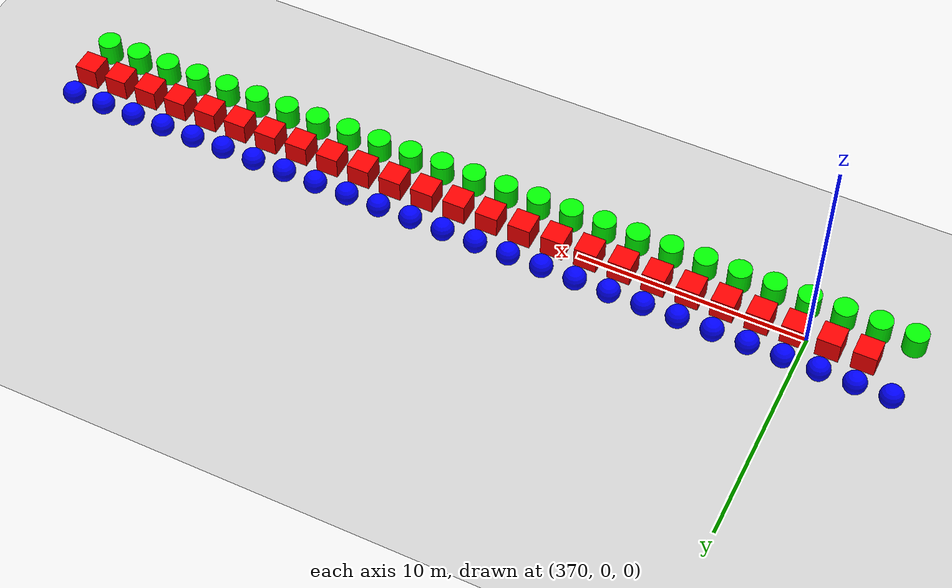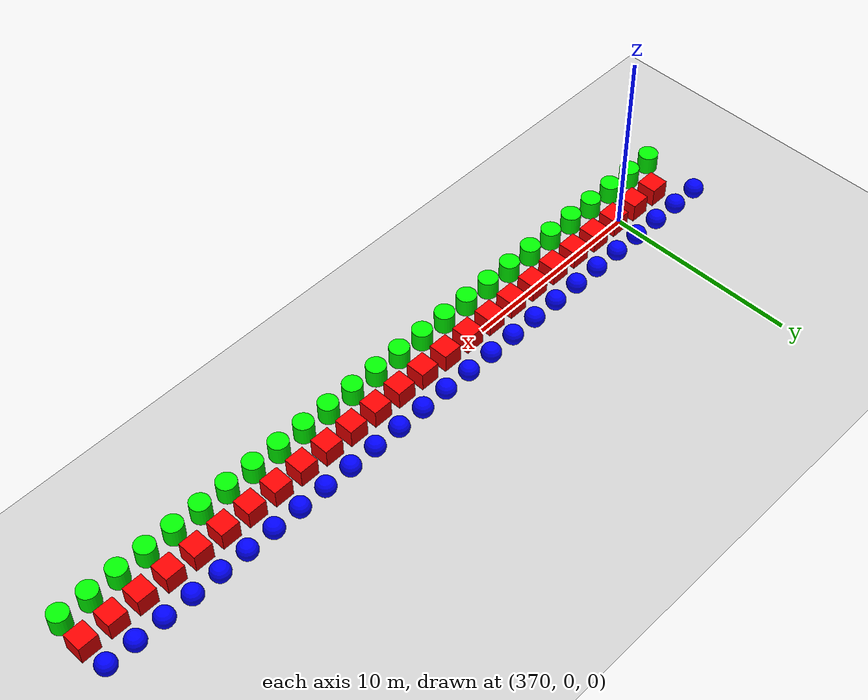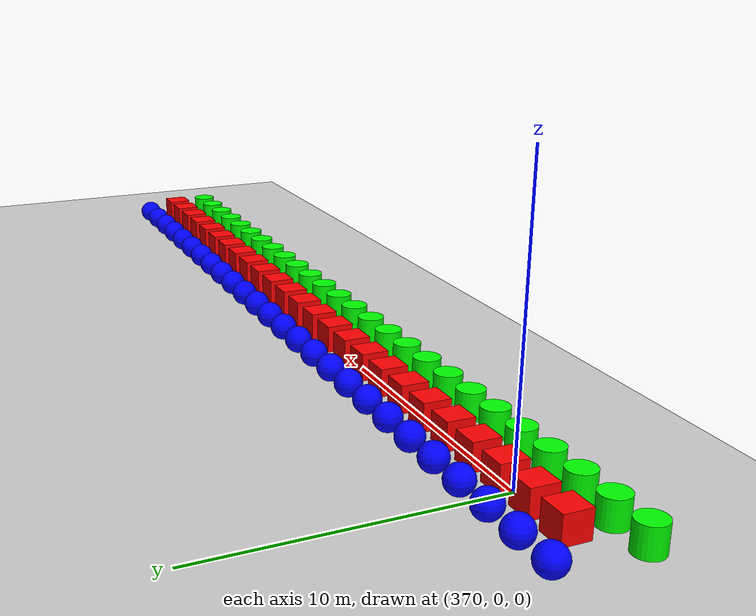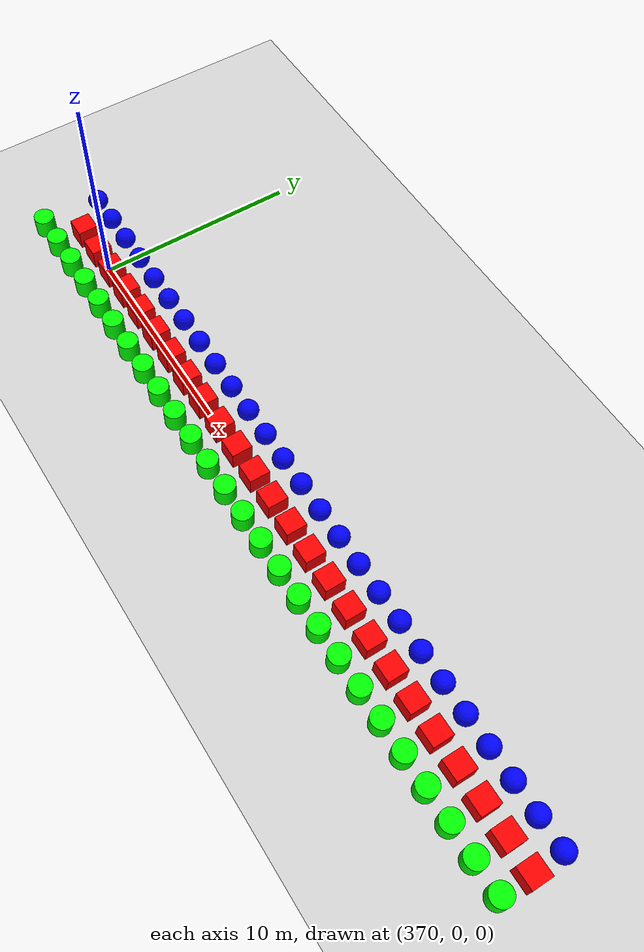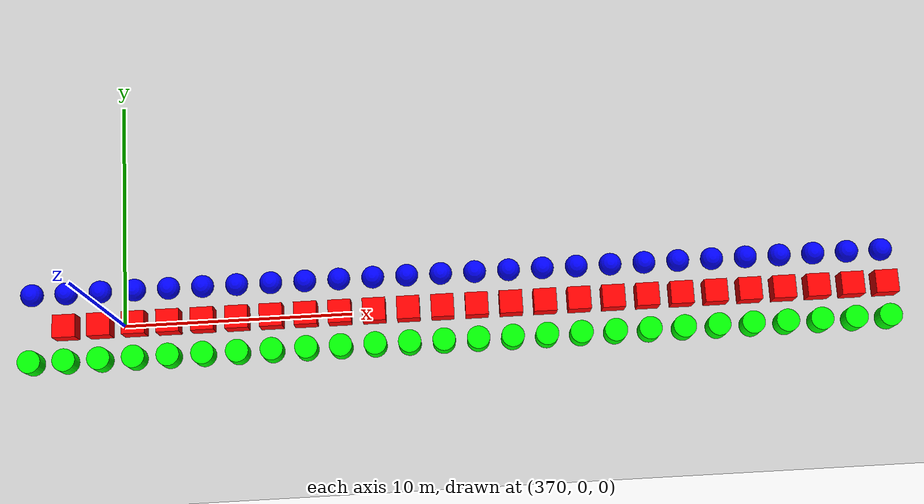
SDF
<sdf version="1.6">
 <world name="shapes">
  <model name="ground_plane">
   <static>true</static>
   <link name="link">
    <collision name="collision">
     <geometry><plane><normal>0 0 1</normal><size>100 100</size></plane></geometry>
    </collision>
    <visual name="visual">
     <geometry><plane><normal>0 0 1</normal><size>100 100</size></plane></geometry>
     <material>
      <ambient>0.8 0.8 0.8 1</ambient>
      <diffuse>0.8 0.8 0.8 1</diffuse>
      <specular>0.8 0.8 0.8 1</specular>
     </material>
    </visual>
   </link>
  </model>
  <model name="cylinder_744">
   <static>false</static>
   <pose>366.0 -1.5 0.5 0 0 0</pose>
   <link name="cylinder_link">
    <inertial>
     <inertia><ixx>2</ixx><ixy>0</ixy><ixz>0</ixz><iyy>2</iyy><iyz>0</iyz><izz>2</izz></inertia>
     <mass>2.0</mass>
    </inertial>
    <collision name="cylinder_collision">
     <geometry><cylinder><radius>0.5</radius><length>1.0</length></cylinder></geometry>
    </collision>
    <visual name="cylinder_visual">
     <geometry><cylinder><radius>0.5</radius><length>1.0</length></cylinder></geometry>
     <material><ambient>0 1 0 1</ambient><diffuse>0 1 0 1</diffuse><specular>0 1 0 1</specular></material>
    </visual>
   </link>
  </model>
  <model name="sphere_744">
   <static>false</static>
   <pose>366.0 1.5 0.5 0 0 0</pose>
   <link name="sphere_link">
    <inertial>
     <inertia><ixx>3</ixx><ixy>0</ixy><ixz>0</ixz><iyy>3</iyy><iyz>0</iyz><izz>3</izz></inertia>
     <mass>3.0</mass>
    </inertial>
    <collision name="sphere_collision"><geometry><sphere><radius>0.5</radius></sphere></geometry></collision>
    <visual name="sphere_visual">
     <geometry><sphere><radius>0.5</radius></sphere></geometry>
     <material><ambient>0 0 1 1</ambient><diffuse>0 0 1 1</diffuse><specular>0 0 1 1</specular></material>
    </visual>
   </link>
  </model>
  <model name="box_745">
   <static>false</static>
   <pose>367.5 0 0.5 0 0 0</pose>
   <link name="box_link">
    <inertial>
     <inertia><ixx>1</ixx><ixy>0</ixy><ixz>0</ixz><iyy>1</iyy><iyz>0</iyz><izz>1</izz></inertia>
     <mass>1.0</mass>
    </inertial>
    <collision name="box_collision"><geometry><box><size>1 1 1</size></box></geometry></collision>
    <visual name="box_visual">
     <geometry><box><size>1 1 1</size></box></geometry>
     <material><ambient>1 0 0 1</ambient><diffuse>1 0 0 1</diffuse><specular>1 0 0 1</specular></material>
    </visual>
   </link>
  </model>
  <model name="cylinder_745">
   <static>false</static>
   <pose>367.5 -1.5 0.5 0 0 0</pose>
   <link name="cylinder_link">
    <inertial>
     <inertia><ixx>2</ixx><ixy>0</ixy><ixz>0</ixz><iyy>2</iyy><iyz>0</iyz><izz>2</izz></inertia>
     <mass>2.0</mass>
    </inertial>
    <collision name="cylinder_collision">
     <geometry><cylinder><radius>0.5</radius><length>1.0</length></cylinder></geometry>
    </collision>
    <visual name="cylinder_visual">
     <geometry><cylinder><radius>0.5</radius><length>1.0</length></cylinder></geometry>
     <material><ambient>0 1 0 1</ambient><diffuse>0 1 0 1</diffuse><specular>0 1 0 1</specular></material>
    </visual>
   </link>
  </model>
  <model name="sphere_745">
   <static>false</static>
   <pose>367.5 1.5 0.5 0 0 0</pose>
   <link name="sphere_link">
    <inertial>
     <inertia><ixx>3</ixx><ixy>0</ixy><ixz>0</ixz><iyy>3</iyy><iyz>0</iyz><izz>3</izz></inertia>
     <mass>3.0</mass>
    </inertial>
    <collision name="sphere_collision"><geometry><sphere><radius>0.5</radius></sphere></geometry></collision>
    <visual name="sphere_visual">
     <geometry><sphere><radius>0.5</radius></sphere></geometry>
     <material><ambient>0 0 1 1</ambient><diffuse>0 0 1 1</diffuse><specular>0 0 1 1</specular></material>
    </visual>
   </link>
  </model>
  <model name="box_746">
   <static>false</static>
   <pose>369.0 0 0.5 0 0 0</pose>
   <link name="box_link">
    <inertial>
     <inertia><ixx>1</ixx><ixy>0</ixy><ixz>0</ixz><iyy>1</iyy><iyz>0</iyz><izz>1</izz></inertia>
     <mass>1.0</mass>
    </inertial>
    <collision name="box_collision"><geometry><box><size>1 1 1</size></box></geometry></collision>
    <visual name="box_visual">
     <geometry><box><size>1 1 1</size></box></geometry>
     <material><ambient>1 0 0 1</ambient><diffuse>1 0 0 1</diffuse><specular>1 0 0 1</specular></material>
    </visual>
   </link>
  </model>
  <model name="cylinder_746">
   <static>false</static>
   <pose>369.0 -1.5 0.5 0 0 0</pose>
   <link name="cylinder_link">
    <inertial>
     <inertia><ixx>2</ixx><ixy>0</ixy><ixz>0</ixz><iyy>2</iyy><iyz>0</iyz><izz>2</izz></inertia>
     <mass>2.0</mass>
    </inertial>
    <collision name="cylinder_collision">
     <geometry><cylinder><radius>0.5</radius><length>1.0</length></cylinder></geometry>
    </collision>
    <visual name="cylinder_visual">
     <geometry><cylinder><radius>0.5</radius><length>1.0</length></cylinder></geometry>
     <material><ambient>0 1 0 1</ambient><diffuse>0 1 0 1</diffuse><specular>0 1 0 1</specular></material>
    </visual>
   </link>
  </model>
  <model name="sphere_746">
   <static>false</static>
   <pose>369.0 1.5 0.5 0 0 0</pose>
   <link name="sphere_link">
    <inertial>
     <inertia><ixx>3</ixx><ixy>0</ixy><ixz>0</ixz><iyy>3</iyy><iyz>0</iyz><izz>3</izz></inertia>
     <mass>3.0</mass>
    </inertial>
    <collision name="sphere_collision"><geometry><sphere><radius>0.5</radius></sphere></geometry></collision>
    <visual name="sphere_visual">
     <geometry><sphere><radius>0.5</radius></sphere></geometry>
     <material><ambient>0 0 1 1</ambient><diffuse>0 0 1 1</diffuse><specular>0 0 1 1</specular></material>
    </visual>
   </link>
  </model>
  <model name="box_747">
   <static>false</static>
   <pose>370.5 0 0.5 0 0 0</pose>
   <link name="box_link">
    <inertial>
     <inertia><ixx>1</ixx><ixy>0</ixy><ixz>0</ixz><iyy>1</iyy><iyz>0</iyz><izz>1</izz></inertia>
     <mass>1.0</mass>
    </inertial>
    <collision name="box_collision"><geometry><box><size>1 1 1</size></box></geometry></collision>
    <visual name="box_visual">
     <geometry><box><size>1 1 1</size></box></geometry>
     <material><ambient>1 0 0 1</ambient><diffuse>1 0 0 1</diffuse><specular>1 0 0 1</specular></material>
    </visual>
   </link>
  </model>
  <model name="cylinder_747">
   <static>false</static>
   <pose>370.5 -1.5 0.5 0 0 0</pose>
   <link name="cylinder_link">
    <inertial>
     <inertia><ixx>2</ixx><ixy>0</ixy><ixz>0</ixz><iyy>2</iyy><iyz>0</iyz><izz>2</izz></inertia>
     <mass>2.0</mass>
    </inertial>
    <collision name="cylinder_collision">
     <geometry><cylinder><radius>0.5</radius><length>1.0</length></cylinder></geometry>
    </collision>
    <visual name="cylinder_visual">
     <geometry><cylinder><radius>0.5</radius><length>1.0</length></cylinder></geometry>
     <material><ambient>0 1 0 1</ambient><diffuse>0 1 0 1</diffuse><specular>0 1 0 1</specular></material>
    </visual>
   </link>
  </model>
  <model name="sphere_747">
   <static>false</static>
   <pose>370.5 1.5 0.5 0 0 0</pose>
   <link name="sphere_link">
    <inertial>
     <inertia><ixx>3</ixx><ixy>0</ixy><ixz>0</ixz><iyy>3</iyy><iyz>0</iyz><izz>3</izz></inertia>
     <mass>3.0</mass>
    </inertial>
    <collision name="sphere_collision"><geometry><sphere><radius>0.5</radius></sphere></geometry></collision>
    <visual name="sphere_visual">
     <geometry><sphere><radius>0.5</radius></sphere></geometry>
     <material><ambient>0 0 1 1</ambient><diffuse>0 0 1 1</diffuse><specular>0 0 1 1</specular></material>
    </visual>
   </link>
  </model>
  <model name="box_748">
   <static>false</static>
   <pose>372.0 0 0.5 0 0 0</pose>
   <link name="box_link">
    <inertial>
     <inertia><ixx>1</ixx><ixy>0</ixy><ixz>0</ixz><iyy>1</iyy><iyz>0</iyz><izz>1</izz></inertia>
     <mass>1.0</mass>
    </inertial>
    <collision name="box_collision"><geometry><box><size>1 1 1</size></box></geometry></collision>
    <visual name="box_visual">
     <geometry><box><size>1 1 1</size></box></geometry>
     <material><ambient>1 0 0 1</ambient><diffuse>1 0 0 1</diffuse><specular>1 0 0 1</specular></material>
    </visual>
   </link>
  </model>
  <model name="cylinder_748">
   <static>false</static>
   <pose>372.0 -1.5 0.5 0 0 0</pose>
   <link name="cylinder_link">
    <inertial>
     <inertia><ixx>2</ixx><ixy>0</ixy><ixz>0</ixz><iyy>2</iyy><iyz>0</iyz><izz>2</izz></inertia>
     <mass>2.0</mass>
    </inertial>
    <collision name="cylinder_collision">
     <geometry><cylinder><radius>0.5</radius><length>1.0</length></cylinder></geometry>
    </collision>
    <visual name="cylinder_visual">
     <geometry><cylinder><radius>0.5</radius><length>1.0</length></cylinder></geometry>
     <material><ambient>0 1 0 1</ambient><diffuse>0 1 0 1</diffuse><specular>0 1 0 1</specular></material>
    </visual>
   </link>
  </model>
  <model name="sphere_748">
   <static>false</static>
   <pose>372.0 1.5 0.5 0 0 0</pose>
   <link name="sphere_link">
    <inertial>
     <inertia><ixx>3</ixx><ixy>0</ixy><ixz>0</ixz><iyy>3</iyy><iyz>0</iyz><izz>3</izz></inertia>
     <mass>3.0</mass>
    </inertial>
    <collision name="sphere_collision"><geometry><sphere><radius>0.5</radius></sphere></geometry></collision>
    <visual name="sphere_visual">
     <geometry><sphere><radius>0.5</radius></sphere></geometry>
     <material><ambient>0 0 1 1</ambient><diffuse>0 0 1 1</diffuse><specular>0 0 1 1</specular></material>
    </visual>
   </link>
  </model>
  <model name="box_749">
   <static>false</static>
   <pose>373.5 0 0.5 0 0 0</pose>
   <link name="box_link">
    <inertial>
     <inertia><ixx>1</ixx><ixy>0</ixy><ixz>0</ixz><iyy>1</iyy><iyz>0</iyz><izz>1</izz></inertia>
     <mass>1.0</mass>
    </inertial>
    <collision name="box_collision"><geometry><box><size>1 1 1</size></box></geometry></collision>
    <visual name="box_visual">
     <geometry><box><size>1 1 1</size></box></geometry>
     <material><ambient>1 0 0 1</ambient><diffuse>1 0 0 1</diffuse><specular>1 0 0 1</specular></material>
    </visual>
   </link>
  </model>
  <model name="cylinder_749">
   <static>false</static>
   <pose>373.5 -1.5 0.5 0 0 0</pose>
   <link name="cylinder_link">
    <inertial>
     <inertia><ixx>2</ixx><ixy>0</ixy><ixz>0</ixz><iyy>2</iyy><iyz>0</iyz><izz>2</izz></inertia>
     <mass>2.0</mass>
    </inertial>
    <collision name="cylinder_collision">
     <geometry><cylinder><radius>0.5</radius><length>1.0</length></cylinder></geometry>
    </collision>
    <visual name="cylinder_visual">
     <geometry><cylinder><radius>0.5</radius><length>1.0</length></cylinder></geometry>
     <material><ambient>0 1 0 1</ambient><diffuse>0 1 0 1</diffuse><specular>0 1 0 1</specular></material>
    </visual>
   </link>
  </model>
  <model name="sphere_749">
   <static>false</static>
   <pose>373.5 1.5 0.5 0 0 0</pose>
   <link name="sphere_link">
    <inertial>
     <inertia><ixx>3</ixx><ixy>0</ixy><ixz>0</ixz><iyy>3</iyy><iyz>0</iyz><izz>3</izz></inertia>
     <mass>3.0</mass>
    </inertial>
    <collision name="sphere_collision"><geometry><sphere><radius>0.5</radius></sphere></geometry></collision>
    <visual name="sphere_visual">
     <geometry><sphere><radius>0.5</radius></sphere></geometry>
     <material><ambient>0 0 1 1</ambient><diffuse>0 0 1 1</diffuse><specular>0 0 1 1</specular></material>
    </visual>
   </link>
  </model>
  <model name="box_750">
   <static>false</static>
   <pose>375.0 0 0.5 0 0 0</pose>
   <link name="box_link">
    <inertial>
     <inertia><ixx>1</ixx><ixy>0</ixy><ixz>0</ixz><iyy>1</iyy><iyz>0</iyz><izz>1</izz></inertia>
     <mass>1.0</mass>
    </inertial>
    <collision name="box_collision"><geometry><box><size>1 1 1</size></box></geometry></collision>
    <visual name="box_visual">
     <geometry><box><size>1 1 1</size></box></geometry>
     <material><ambient>1 0 0 1</ambient><diffuse>1 0 0 1</diffuse><specular>1 0 0 1</specular></material>
    </visual>
   </link>
  </model>
  <model name="cylinder_750">
   <static>false</static>
   <pose>375.0 -1.5 0.5 0 0 0</pose>
   <link name="cylinder_link">
    <inertial>
     <inertia><ixx>2</ixx><ixy>0</ixy><ixz>0</ixz><iyy>2</iyy><iyz>0</iyz><izz>2</izz></inertia>
     <mass>2.0</mass>
    </inertial>
    <collision name="cylinder_collision">
     <geometry><cylinder><radius>0.5</radius><length>1.0</length></cylinder></geometry>
    </collision>
    <visual name="cylinder_visual">
     <geometry><cylinder><radius>0.5</radius><length>1.0</length></cylinder></geometry>
     <material><ambient>0 1 0 1</ambient><diffuse>0 1 0 1</diffuse><specular>0 1 0 1</specular></material>
    </visual>
   </link>
  </model>
  <model name="sphere_750">
   <static>false</static>
   <pose>375.0 1.5 0.5 0 0 0</pose>
   <link name="sphere_link">
    <inertial>
     <inertia><ixx>3</ixx><ixy>0</ixy><ixz>0</ixz><iyy>3</iyy><iyz>0</iyz><izz>3</izz></inertia>
     <mass>3.0</mass>
    </inertial>
    <collision name="sphere_collision"><geometry><sphere><radius>0.5</radius></sphere></geometry></collision>
    <visual name="sphere_visual">
     <geometry><sphere><radius>0.5</radius></sphere></geometry>
     <material><ambient>0 0 1 1</ambient><diffuse>0 0 1 1</diffuse><specular>0 0 1 1</specular></material>
    </visual>
   </link>
  </model>
  <model name="box_751">
   <static>false</static>
   <pose>376.5 0 0.5 0 0 0</pose>
   <link name="box_link">
    <inertial>
     <inertia><ixx>1</ixx><ixy>0</ixy><ixz>0</ixz><iyy>1</iyy><iyz>0</iyz><izz>1</izz></inertia>
     <mass>1.0</mass>
    </inertial>
    <collision name="box_collision"><geometry><box><size>1 1 1</size></box></geometry></collision>
    <visual name="box_visual">
     <geometry><box><size>1 1 1</size></box></geometry>
     <material><ambient>1 0 0 1</ambient><diffuse>1 0 0 1</diffuse><specular>1 0 0 1</specular></material>
    </visual>
   </link>
  </model>
  <model name="cylinder_751">
   <static>false</static>
   <pose>376.5 -1.5 0.5 0 0 0</pose>
   <link name="cylinder_link">
    <inertial>
     <inertia><ixx>2</ixx><ixy>0</ixy><ixz>0</ixz><iyy>2</iyy><iyz>0</iyz><izz>2</izz></inertia>
     <mass>2.0</mass>
    </inertial>
    <collision name="cylinder_collision">
     <geometry><cylinder><radius>0.5</radius><length>1.0</length></cylinder></geometry>
    </collision>
    <visual name="cylinder_visual">
     <geometry><cylinder><radius>0.5</radius><length>1.0</length></cylinder></geometry>
     <material><ambient>0 1 0 1</ambient><diffuse>0 1 0 1</diffuse><specular>0 1 0 1</specular></material>
    </visual>
   </link>
  </model>
  <model name="sphere_751">
   <static>false</static>
   <pose>376.5 1.5 0.5 0 0 0</pose>
   <link name="sphere_link">
    <inertial>
     <inertia><ixx>3</ixx><ixy>0</ixy><ixz>0</ixz><iyy>3</iyy><iyz>0</iyz><izz>3</izz></inertia>
     <mass>3.0</mass>
    </inertial>
    <collision name="sphere_collision"><geometry><sphere><radius>0.5</radius></sphere></geometry></collision>
    <visual name="sphere_visual">
     <geometry><sphere><radius>0.5</radius></sphere></geometry>
     <material><ambient>0 0 1 1</ambient><diffuse>0 0 1 1</diffuse><specular>0 0 1 1</specular></material>
    </visual>
   </link>
  </model>
  <model name="box_752">
   <static>false</static>
   <pose>378.0 0 0.5 0 0 0</pose>
   <link name="box_link">
    <inertial>
     <inertia><ixx>1</ixx><ixy>0</ixy><ixz>0</ixz><iyy>1</iyy><iyz>0</iyz><izz>1</izz></inertia>
     <mass>1.0</mass>
    </inertial>
    <collision name="box_collision"><geometry><box><size>1 1 1</size></box></geometry></collision>
    <visual name="box_visual">
     <geometry><box><size>1 1 1</size></box></geometry>
     <material><ambient>1 0 0 1</ambient><diffuse>1 0 0 1</diffuse><specular>1 0 0 1</specular></material>
    </visual>
   </link>
  </model>
  <model name="cylinder_752">
   <static>false</static>
   <pose>378.0 -1.5 0.5 0 0 0</pose>
   <link name="cylinder_link">
    <inertial>
     <inertia><ixx>2</ixx><ixy>0</ixy><ixz>0</ixz><iyy>2</iyy><iyz>0</iyz><izz>2</izz></inertia>
     <mass>2.0</mass>
    </inertial>
    <collision name="cylinder_collision">
     <geometry><cylinder><radius>0.5</radius><length>1.0</length></cylinder></geometry>
    </collision>
    <visual name="cylinder_visual">
     <geometry><cylinder><radius>0.5</radius><length>1.0</length></cylinder></geometry>
     <material><ambient>0 1 0 1</ambient><diffuse>0 1 0 1</diffuse><specular>0 1 0 1</specular></material>
    </visual>
   </link>
  </model>
  <model name="sphere_752">
   <static>false</static>
   <pose>378.0 1.5 0.5 0 0 0</pose>
   <link name="sphere_link">
    <inertial>
     <inertia><ixx>3</ixx><ixy>0</ixy><ixz>0</ixz><iyy>3</iyy><iyz>0</iyz><izz>3</izz></inertia>
     <mass>3.0</mass>
    </inertial>
    <collision name="sphere_collision"><geometry><sphere><radius>0.5</radius></sphere></geometry></collision>
    <visual name="sphere_visual">
     <geometry><sphere><radius>0.5</radius></sphere></geometry>
     <material><ambient>0 0 1 1</ambient><diffuse>0 0 1 1</diffuse><specular>0 0 1 1</specular></material>
    </visual>
   </link>
  </model>
  <model name="box_753">
   <static>false</static>
   <pose>379.5 0 0.5 0 0 0</pose>
   <link name="box_link">
    <inertial>
     <inertia><ixx>1</ixx><ixy>0</ixy><ixz>0</ixz><iyy>1</iyy><iyz>0</iyz><izz>1</izz></inertia>
     <mass>1.0</mass>
    </inertial>
    <collision name="box_collision"><geometry><box><size>1 1 1</size></box></geometry></collision>
    <visual name="box_visual">
     <geometry><box><size>1 1 1</size></box></geometry>
     <material><ambient>1 0 0 1</ambient><diffuse>1 0 0 1</diffuse><specular>1 0 0 1</specular></material>
    </visual>
   </link>
  </model>
  <model name="cylinder_753">
   <static>false</static>
   <pose>379.5 -1.5 0.5 0 0 0</pose>
   <link name="cylinder_link">
    <inertial>
     <inertia><ixx>2</ixx><ixy>0</ixy><ixz>0</ixz><iyy>2</iyy><iyz>0</iyz><izz>2</izz></inertia>
     <mass>2.0</mass>
    </inertial>
    <collision name="cylinder_collision">
     <geometry><cylinder><radius>0.5</radius><length>1.0</length></cylinder></geometry>
    </collision>
    <visual name="cylinder_visual">
     <geometry><cylinder><radius>0.5</radius><length>1.0</length></cylinder></geometry>
     <material><ambient>0 1 0 1</ambient><diffuse>0 1 0 1</diffuse><specular>0 1 0 1</specular></material>
    </visual>
   </link>
  </model>
  <model name="sphere_753">
   <static>false</static>
   <pose>379.5 1.5 0.5 0 0 0</pose>
   <link name="sphere_link">
    <inertial>
     <inertia><ixx>3</ixx><ixy>0</ixy><ixz>0</ixz><iyy>3</iyy><iyz>0</iyz><izz>3</izz></inertia>
     <mass>3.0</mass>
    </inertial>
    <collision name="sphere_collision"><geometry><sphere><radius>0.5</radius></sphere></geometry></collision>
    <visual name="sphere_visual">
     <geometry><sphere><radius>0.5</radius></sphere></geometry>
     <material><ambient>0 0 1 1</ambient><diffuse>0 0 1 1</diffuse><specular>0 0 1 1</specular></material>
    </visual>
   </link>
  </model>
  <model name="box_754">
   <static>false</static>
   <pose>381.0 0 0.5 0 0 0</pose>
   <link name="box_link">
    <inertial>
     <inertia><ixx>1</ixx><ixy>0</ixy><ixz>0</ixz><iyy>1</iyy><iyz>0</iyz><izz>1</izz></inertia>
     <mass>1.0</mass>
    </inertial>
    <collision name="box_collision"><geometry><box><size>1 1 1</size></box></geometry></collision>
    <visual name="box_visual">
     <geometry><box><size>1 1 1</size></box></geometry>
     <material><ambient>1 0 0 1</ambient><diffuse>1 0 0 1</diffuse><specular>1 0 0 1</specular></material>
    </visual>
   </link>
  </model>
  <model name="cylinder_754">
   <static>false</static>
   <pose>381.0 -1.5 0.5 0 0 0</pose>
   <link name="cylinder_link">
    <inertial>
     <inertia><ixx>2</ixx><ixy>0</ixy><ixz>0</ixz><iyy>2</iyy><iyz>0</iyz><izz>2</izz></inertia>
     <mass>2.0</mass>
    </inertial>
    <collision name="cylinder_collision">
     <geometry><cylinder><radius>0.5</radius><length>1.0</length></cylinder></geometry>
    </collision>
    <visual name="cylinder_visual">
     <geometry><cylinder><radius>0.5</radius><length>1.0</length></cylinder></geometry>
     <material><ambient>0 1 0 1</ambient><diffuse>0 1 0 1</diffuse><specular>0 1 0 1</specular></material>
    </visual>
   </link>
  </model>
  <model name="sphere_754">
   <static>false</static>
   <pose>381.0 1.5 0.5 0 0 0</pose>
   <link name="sphere_link">
    <inertial>
     <inertia><ixx>3</ixx><ixy>0</ixy><ixz>0</ixz><iyy>3</iyy><iyz>0</iyz><izz>3</izz></inertia>
     <mass>3.0</mass>
    </inertial>
    <collision name="sphere_collision"><geometry><sphere><radius>0.5</radius></sphere></geometry></collision>
    <visual name="sphere_visual">
     <geometry><sphere><radius>0.5</radius></sphere></geometry>
     <material><ambient>0 0 1 1</ambient><diffuse>0 0 1 1</diffuse><specular>0 0 1 1</specular></material>
    </visual>
   </link>
  </model>
  <model name="box_755">
   <static>false</static>
   <pose>382.5 0 0.5 0 0 0</pose>
   <link name="box_link">
    <inertial>
     <inertia><ixx>1</ixx><ixy>0</ixy><ixz>0</ixz><iyy>1</iyy><iyz>0</iyz><izz>1</izz></inertia>
     <mass>1.0</mass>
    </inertial>
    <collision name="box_collision"><geometry><box><size>1 1 1</size></box></geometry></collision>
    <visual name="box_visual">
     <geometry><box><size>1 1 1</size></box></geometry>
     <material><ambient>1 0 0 1</ambient><diffuse>1 0 0 1</diffuse><specular>1 0 0 1</specular></material>
    </visual>
   </link>
  </model>
  <model name="cylinder_755">
   <static>false</static>
   <pose>382.5 -1.5 0.5 0 0 0</pose>
   <link name="cylinder_link">
    <inertial>
     <inertia><ixx>2</ixx><ixy>0</ixy><ixz>0</ixz><iyy>2</iyy><iyz>0</iyz><izz>2</izz></inertia>
     <mass>2.0</mass>
    </inertial>
    <collision name="cylinder_collision">
     <geometry><cylinder><radius>0.5</radius><length>1.0</length></cylinder></geometry>
    </collision>
    <visual name="cylinder_visual">
     <geometry><cylinder><radius>0.5</radius><length>1.0</length></cylinder></geometry>
     <material><ambient>0 1 0 1</ambient><diffuse>0 1 0 1</diffuse><specular>0 1 0 1</specular></material>
    </visual>
   </link>
  </model>
  <model name="sphere_755">
   <static>false</static>
   <pose>382.5 1.5 0.5 0 0 0</pose>
   <link name="sphere_link">
    <inertial>
     <inertia><ixx>3</ixx><ixy>0</ixy><ixz>0</ixz><iyy>3</iyy><iyz>0</iyz><izz>3</izz></inertia>
     <mass>3.0</mass>
    </inertial>
    <collision name="sphere_collision"><geometry><sphere><radius>0.5</radius></sphere></geometry></collision>
    <visual name="sphere_visual">
     <geometry><sphere><radius>0.5</radius></sphere></geometry>
     <material><ambient>0 0 1 1</ambient><diffuse>0 0 1 1</diffuse><specular>0 0 1 1</specular></material>
    </visual>
   </link>
  </model>
  <model name="box_756">
   <static>false</static>
   <pose>384.0 0 0.5 0 0 0</pose>
   <link name="box_link">
    <inertial>
     <inertia><ixx>1</ixx><ixy>0</ixy><ixz>0</ixz><iyy>1</iyy><iyz>0</iyz><izz>1</izz></inertia>
     <mass>1.0</mass>
    </inertial>
    <collision name="box_collision"><geometry><box><size>1 1 1</size></box></geometry></collision>
    <visual name="box_visual">
     <geometry><box><size>1 1 1</size></box></geometry>
     <material><ambient>1 0 0 1</ambient><diffuse>1 0 0 1</diffuse><specular>1 0 0 1</specular></material>
    </visual>
   </link>
  </model>
  <model name="cylinder_756">
   <static>false</static>
   <pose>384.0 -1.5 0.5 0 0 0</pose>
   <link name="cylinder_link">
    <inertial>
     <inertia><ixx>2</ixx><ixy>0</ixy><ixz>0</ixz><iyy>2</iyy><iyz>0</iyz><izz>2</izz></inertia>
     <mass>2.0</mass>
    </inertial>
    <collision name="cylinder_collision">
     <geometry><cylinder><radius>0.5</radius><length>1.0</length></cylinder></geometry>
    </collision>
    <visual name="cylinder_visual">
     <geometry><cylinder><radius>0.5</radius><length>1.0</length></cylinder></geometry>
     <material><ambient>0 1 0 1</ambient><diffuse>0 1 0 1</diffuse><specular>0 1 0 1</specular></material>
    </visual>
   </link>
  </model>
  <model name="sphere_756">
   <static>false</static>
   <pose>384.0 1.5 0.5 0 0 0</pose>
   <link name="sphere_link">
    <inertial>
     <inertia><ixx>3</ixx><ixy>0</ixy><ixz>0</ixz><iyy>3</iyy><iyz>0</iyz><izz>3</izz></inertia>
     <mass>3.0</mass>
    </inertial>
    <collision name="sphere_collision"><geometry><sphere><radius>0.5</radius></sphere></geometry></collision>
    <visual name="sphere_visual">
     <geometry><sphere><radius>0.5</radius></sphere></geometry>
     <material><ambient>0 0 1 1</ambient><diffuse>0 0 1 1</diffuse><specular>0 0 1 1</specular></material>
    </visual>
   </link>
  </model>
  <model name="box_757">
   <static>false</static>
   <pose>385.5 0 0.5 0 0 0</pose>
   <link name="box_link">
    <inertial>
     <inertia><ixx>1</ixx><ixy>0</ixy><ixz>0</ixz><iyy>1</iyy><iyz>0</iyz><izz>1</izz></inertia>
     <mass>1.0</mass>
    </inertial>
    <collision name="box_collision"><geometry><box><size>1 1 1</size></box></geometry></collision>
    <visual name="box_visual">
     <geometry><box><size>1 1 1</size></box></geometry>
     <material><ambient>1 0 0 1</ambient><diffuse>1 0 0 1</diffuse><specular>1 0 0 1</specular></material>
    </visual>
   </link>
  </model>
  <model name="cylinder_757">
   <static>false</static>
   <pose>385.5 -1.5 0.5 0 0 0</pose>
   <link name="cylinder_link">
    <inertial>
     <inertia><ixx>2</ixx><ixy>0</ixy><ixz>0</ixz><iyy>2</iyy><iyz>0</iyz><izz>2</izz></inertia>
     <mass>2.0</mass>
    </inertial>
    <collision name="cylinder_collision">
     <geometry><cylinder><radius>0.5</radius><length>1.0</length></cylinder></geometry>
    </collision>
    <visual name="cylinder_visual">
     <geometry><cylinder><radius>0.5</radius><length>1.0</length></cylinder></geometry>
     <material><ambient>0 1 0 1</ambient><diffuse>0 1 0 1</diffuse><specular>0 1 0 1</specular></material>
    </visual>
   </link>
  </model>
  <model name="sphere_757">
   <static>false</static>
   <pose>385.5 1.5 0.5 0 0 0</pose>
   <link name="sphere_link">
    <inertial>
     <inertia><ixx>3</ixx><ixy>0</ixy><ixz>0</ixz><iyy>3</iyy><iyz>0</iyz><izz>3</izz></inertia>
     <mass>3.0</mass>
    </inertial>
    <collision name="sphere_collision"><geometry><sphere><radius>0.5</radius></sphere></geometry></collision>
    <visual name="sphere_visual">
     <geometry><sphere><radius>0.5</radius></sphere></geometry>
     <material><ambient>0 0 1 1</ambient><diffuse>0 0 1 1</diffuse><specular>0 0 1 1</specular></material>
    </visual>
   </link>
  </model>
  <model name="box_758">
   <static>false</static>
   <pose>387.0 0 0.5 0 0 0</pose>
   <link name="box_link">
    <inertial>
     <inertia><ixx>1</ixx><ixy>0</ixy><ixz>0</ixz><iyy>1</iyy><iyz>0</iyz><izz>1</izz></inertia>
     <mass>1.0</mass>
    </inertial>
    <collision name="box_collision"><geometry><box><size>1 1 1</size></box></geometry></collision>
    <visual name="box_visual">
     <geometry><box><size>1 1 1</size></box></geometry>
     <material><ambient>1 0 0 1</ambient><diffuse>1 0 0 1</diffuse><specular>1 0 0 1</specular></material>
    </visual>
   </link>
  </model>
  <model name="cylinder_758">
   <static>false</static>
   <pose>387.0 -1.5 0.5 0 0 0</pose>
   <link name="cylinder_link">
    <inertial>
     <inertia><ixx>2</ixx><ixy>0</ixy><ixz>0</ixz><iyy>2</iyy><iyz>0</iyz><izz>2</izz></inertia>
     <mass>2.0</mass>
    </inertial>
    <collision name="cylinder_collision">
     <geometry><cylinder><radius>0.5</radius><length>1.0</length></cylinder></geometry>
    </collision>
    <visual name="cylinder_visual">
     <geometry><cylinder><radius>0.5</radius><length>1.0</length></cylinder></geometry>
     <material><ambient>0 1 0 1</ambient><diffuse>0 1 0 1</diffuse><specular>0 1 0 1</specular></material>
    </visual>
   </link>
  </model>
  <model name="sphere_758">
   <static>false</static>
   <pose>387.0 1.5 0.5 0 0 0</pose>
   <link name="sphere_link">
    <inertial>
     <inertia><ixx>3</ixx><ixy>0</ixy><ixz>0</ixz><iyy>3</iyy><iyz>0</iyz><izz>3</izz></inertia>
     <mass>3.0</mass>
    </inertial>
    <collision name="sphere_collision"><geometry><sphere><radius>0.5</radius></sphere></geometry></collision>
    <visual name="sphere_visual">
     <geometry><sphere><radius>0.5</radius></sphere></geometry>
     <material><ambient>0 0 1 1</ambient><diffuse>0 0 1 1</diffuse><specular>0 0 1 1</specular></material>
    </visual>
   </link>
  </model>
  <model name="box_759">
   <static>false</static>
   <pose>388.5 0 0.5 0 0 0</pose>
   <link name="box_link">
    <inertial>
     <inertia><ixx>1</ixx><ixy>0</ixy><ixz>0</ixz><iyy>1</iyy><iyz>0</iyz><izz>1</izz></inertia>
     <mass>1.0</mass>
    </inertial>
    <collision name="box_collision"><geometry><box><size>1 1 1</size></box></geometry></collision>
    <visual name="box_visual">
     <geometry><box><size>1 1 1</size></box></geometry>
     <material><ambient>1 0 0 1</ambient><diffuse>1 0 0 1</diffuse><specular>1 0 0 1</specular></material>
    </visual>
   </link>
  </model>
  <model name="cylinder_759">
   <static>false</static>
   <pose>388.5 -1.5 0.5 0 0 0</pose>
   <link name="cylinder_link">
    <inertial>
     <inertia><ixx>2</ixx><ixy>0</ixy><ixz>0</ixz><iyy>2</iyy><iyz>0</iyz><izz>2</izz></inertia>
     <mass>2.0</mass>
    </inertial>
    <collision name="cylinder_collision">
     <geometry><cylinder><radius>0.5</radius><length>1.0</length></cylinder></geometry>
    </collision>
    <visual name="cylinder_visual">
     <geometry><cylinder><radius>0.5</radius><length>1.0</length></cylinder></geometry>
     <material><ambient>0 1 0 1</ambient><diffuse>0 1 0 1</diffuse><specular>0 1 0 1</specular></material>
    </visual>
   </link>
  </model>
  <model name="sphere_759">
   <static>false</static>
   <pose>388.5 1.5 0.5 0 0 0</pose>
   <link name="sphere_link">
    <inertial>
     <inertia><ixx>3</ixx><ixy>0</ixy><ixz>0</ixz><iyy>3</iyy><iyz>0</iyz><izz>3</izz></inertia>
     <mass>3.0</mass>
    </inertial>
    <collision name="sphere_collision"><geometry><sphere><radius>0.5</radius></sphere></geometry></collision>
    <visual name="sphere_visual">
     <geometry><sphere><radius>0.5</radius></sphere></geometry>
     <material><ambient>0 0 1 1</ambient><diffuse>0 0 1 1</diffuse><specular>0 0 1 1</specular></material>
    </visual>
   </link>
  </model>
  <model name="box_760">
   <static>false</static>
   <pose>390.0 0 0.5 0 0 0</pose>
   <link name="box_link">
    <inertial>
     <inertia><ixx>1</ixx><ixy>0</ixy><ixz>0</ixz><iyy>1</iyy><iyz>0</iyz><izz>1</izz></inertia>
     <mass>1.0</mass>
    </inertial>
    <collision name="box_collision"><geometry><box><size>1 1 1</size></box></geometry></collision>
    <visual name="box_visual">
     <geometry><box><size>1 1 1</size></box></geometry>
     <material><ambient>1 0 0 1</ambient><diffuse>1 0 0 1</diffuse><specular>1 0 0 1</specular></material>
    </visual>
   </link>
  </model>
  <model name="cylinder_760">
   <static>false</static>
   <pose>390.0 -1.5 0.5 0 0 0</pose>
   <link name="cylinder_link">
    <inertial>
     <inertia><ixx>2</ixx><ixy>0</ixy><ixz>0</ixz><iyy>2</iyy><iyz>0</iyz><izz>2</izz></inertia>
     <mass>2.0</mass>
    </inertial>
    <collision name="cylinder_collision">
     <geometry><cylinder><radius>0.5</radius><length>1.0</length></cylinder></geometry>
    </collision>
    <visual name="cylinder_visual">
     <geometry><cylinder><radius>0.5</radius><length>1.0</length></cylinder></geometry>
     <material><ambient>0 1 0 1</ambient><diffuse>0 1 0 1</diffuse><specular>0 1 0 1</specular></material>
    </visual>
   </link>
  </model>
  <model name="sphere_760">
   <static>false</static>
   <pose>390.0 1.5 0.5 0 0 0</pose>
   <link name="sphere_link">
    <inertial>
     <inertia><ixx>3</ixx><ixy>0</ixy><ixz>0</ixz><iyy>3</iyy><iyz>0</iyz><izz>3</izz></inertia>
     <mass>3.0</mass>
    </inertial>
    <collision name="sphere_collision"><geometry><sphere><radius>0.5</radius></sphere></geometry></collision>
    <visual name="sphere_visual">
     <geometry><sphere><radius>0.5</radius></sphere></geometry>
     <material><ambient>0 0 1 1</ambient><diffuse>0 0 1 1</diffuse><specular>0 0 1 1</specular></material>
    </visual>
   </link>
  </model>
  <model name="box_761">
   <static>false</static>
   <pose>391.5 0 0.5 0 0 0</pose>
   <link name="box_link">
    <inertial>
     <inertia><ixx>1</ixx><ixy>0</ixy><ixz>0</ixz><iyy>1</iyy><iyz>0</iyz><izz>1</izz></inertia>
     <mass>1.0</mass>
    </inertial>
    <collision name="box_collision"><geometry><box><size>1 1 1</size></box></geometry></collision>
    <visual name="box_visual">
     <geometry><box><size>1 1 1</size></box></geometry>
     <material><ambient>1 0 0 1</ambient><diffuse>1 0 0 1</diffuse><specular>1 0 0 1</specular></material>
    </visual>
   </link>
  </model>
  <model name="cylinder_761">
   <static>false</static>
   <pose>391.5 -1.5 0.5 0 0 0</pose>
   <link name="cylinder_link">
    <inertial>
     <inertia><ixx>2</ixx><ixy>0</ixy><ixz>0</ixz><iyy>2</iyy><iyz>0</iyz><izz>2</izz></inertia>
     <mass>2.0</mass>
    </inertial>
    <collision name="cylinder_collision">
     <geometry><cylinder><radius>0.5</radius><length>1.0</length></cylinder></geometry>
    </collision>
    <visual name="cylinder_visual">
     <geometry><cylinder><radius>0.5</radius><length>1.0</length></cylinder></geometry>
     <material><ambient>0 1 0 1</ambient><diffuse>0 1 0 1</diffuse><specular>0 1 0 1</specular></material>
    </visual>
   </link>
  </model>
  <model name="sphere_761">
   <static>false</static>
   <pose>391.5 1.5 0.5 0 0 0</pose>
   <link name="sphere_link">
    <inertial>
     <inertia><ixx>3</ixx><ixy>0</ixy><ixz>0</ixz><iyy>3</iyy><iyz>0</iyz><izz>3</izz></inertia>
     <mass>3.0</mass>
    </inertial>
    <collision name="sphere_collision"><geometry><sphere><radius>0.5</radius></sphere></geometry></collision>
    <visual name="sphere_visual">
     <geometry><sphere><radius>0.5</radius></sphere></geometry>
     <material><ambient>0 0 1 1</ambient><diffuse>0 0 1 1</diffuse><specular>0 0 1 1</specular></material>
    </visual>
   </link>
  </model>
  <model name="box_762">
   <static>false</static>
   <pose>393.0 0 0.5 0 0 0</pose>
   <link name="box_link">
    <inertial>
     <inertia><ixx>1</ixx><ixy>0</ixy><ixz>0</ixz><iyy>1</iyy><iyz>0</iyz><izz>1</izz></inertia>
     <mass>1.0</mass>
    </inertial>
    <collision name="box_collision"><geometry><box><size>1 1 1</size></box></geometry></collision>
    <visual name="box_visual">
     <geometry><box><size>1 1 1</size></box></geometry>
     <material><ambient>1 0 0 1</ambient><diffuse>1 0 0 1</diffuse><specular>1 0 0 1</specular></material>
    </visual>
   </link>
  </model>
  <model name="cylinder_762">
   <static>false</static>
   <pose>393.0 -1.5 0.5 0 0 0</pose>
   <link name="cylinder_link">
    <inertial>
     <inertia><ixx>2</ixx><ixy>0</ixy><ixz>0</ixz><iyy>2</iyy><iyz>0</iyz><izz>2</izz></inertia>
     <mass>2.0</mass>
    </inertial>
    <collision name="cylinder_collision">
     <geometry><cylinder><radius>0.5</radius><length>1.0</length></cylinder></geometry>
    </collision>
    <visual name="cylinder_visual">
     <geometry><cylinder><radius>0.5</radius><length>1.0</length></cylinder></geometry>
     <material><ambient>0 1 0 1</ambient><diffuse>0 1 0 1</diffuse><specular>0 1 0 1</specular></material>
    </visual>
   </link>
  </model>
  <model name="sphere_762">
   <static>false</static>
   <pose>393.0 1.5 0.5 0 0 0</pose>
   <link name="sphere_link">
    <inertial>
     <inertia><ixx>3</ixx><ixy>0</ixy><ixz>0</ixz><iyy>3</iyy><iyz>0</iyz><izz>3</izz></inertia>
     <mass>3.0</mass>
    </inertial>
    <collision name="sphere_collision"><geometry><sphere><radius>0.5</radius></sphere></geometry></collision>
    <visual name="sphere_visual">
     <geometry><sphere><radius>0.5</radius></sphere></geometry>
     <material><ambient>0 0 1 1</ambient><diffuse>0 0 1 1</diffuse><specular>0 0 1 1</specular></material>
    </visual>
   </link>
  </model>
  <model name="box_763">
   <static>false</static>
   <pose>394.5 0 0.5 0 0 0</pose>
   <link name="box_link">
    <inertial>
     <inertia><ixx>1</ixx><ixy>0</ixy><ixz>0</ixz><iyy>1</iyy><iyz>0</iyz><izz>1</izz></inertia>
     <mass>1.0</mass>
    </inertial>
    <collision name="box_collision"><geometry><box><size>1 1 1</size></box></geometry></collision>
    <visual name="box_visual">
     <geometry><box><size>1 1 1</size></box></geometry>
     <material><ambient>1 0 0 1</ambient><diffuse>1 0 0 1</diffuse><specular>1 0 0 1</specular></material>
    </visual>
   </link>
  </model>
  <model name="cylinder_763">
   <static>false</static>
   <pose>394.5 -1.5 0.5 0 0 0</pose>
   <link name="cylinder_link">
    <inertial>
     <inertia><ixx>2</ixx><ixy>0</ixy><ixz>0</ixz><iyy>2</iyy><iyz>0</iyz><izz>2</izz></inertia>
     <mass>2.0</mass>
    </inertial>
    <collision name="cylinder_collision">
     <geometry><cylinder><radius>0.5</radius><length>1.0</length></cylinder></geometry>
    </collision>
    <visual name="cylinder_visual">
     <geometry><cylinder><radius>0.5</radius><length>1.0</length></cylinder></geometry>
     <material><ambient>0 1 0 1</ambient><diffuse>0 1 0 1</diffuse><specular>0 1 0 1</specular></material>
    </visual>
   </link>
  </model>
  <model name="sphere_763">
   <static>false</static>
   <pose>394.5 1.5 0.5 0 0 0</pose>
   <link name="sphere_link">
    <inertial>
     <inertia><ixx>3</ixx><ixy>0</ixy><ixz>0</ixz><iyy>3</iyy><iyz>0</iyz><izz>3</izz></inertia>
     <mass>3.0</mass>
    </inertial>
    <collision name="sphere_collision"><geometry><sphere><radius>0.5</radius></sphere></geometry></collision>
    <visual name="sphere_visual">
     <geometry><sphere><radius>0.5</radius></sphere></geometry>
     <material><ambient>0 0 1 1</ambient><diffuse>0 0 1 1</diffuse><specular>0 0 1 1</specular></material>
    </visual>
   </link>
  </model>
  <model name="box_764">
   <static>false</static>
   <pose>396.0 0 0.5 0 0 0</pose>
   <link name="box_link">
    <inertial>
     <inertia><ixx>1</ixx><ixy>0</ixy><ixz>0</ixz><iyy>1</iyy><iyz>0</iyz><izz>1</izz></inertia>
     <mass>1.0</mass>
    </inertial>
    <collision name="box_collision"><geometry><box><size>1 1 1</size></box></geometry></collision>
    <visual name="box_visual">
     <geometry><box><size>1 1 1</size></box></geometry>
     <material><ambient>1 0 0 1</ambient><diffuse>1 0 0 1</diffuse><specular>1 0 0 1</specular></material>
    </visual>
   </link>
  </model>
  <model name="cylinder_764">
   <static>false</static>
   <pose>396.0 -1.5 0.5 0 0 0</pose>
   <link name="cylinder_link">
    <inertial>
     <inertia><ixx>2</ixx><ixy>0</ixy><ixz>0</ixz><iyy>2</iyy><iyz>0</iyz><izz>2</izz></inertia>
     <mass>2.0</mass>
    </inertial>
    <collision name="cylinder_collision">
     <geometry><cylinder><radius>0.5</radius><length>1.0</length></cylinder></geometry>
    </collision>
    <visual name="cylinder_visual">
     <geometry><cylinder><radius>0.5</radius><length>1.0</length></cylinder></geometry>
     <material><ambient>0 1 0 1</ambient><diffuse>0 1 0 1</diffuse><specular>0 1 0 1</specular></material>
    </visual>
   </link>
  </model>
  <model name="sphere_764">
   <static>false</static>
   <pose>396.0 1.5 0.5 0 0 0</pose>
   <link name="sphere_link">
    <inertial>
     <inertia><ixx>3</ixx><ixy>0</ixy><ixz>0</ixz><iyy>3</iyy><iyz>0</iyz><izz>3</izz></inertia>
     <mass>3.0</mass>
    </inertial>
    <collision name="sphere_collision"><geometry><sphere><radius>0.5</radius></sphere></geometry></collision>
    <visual name="sphere_visual">
     <geometry><sphere><radius>0.5</radius></sphere></geometry>
     <material><ambient>0 0 1 1</ambient><diffuse>0 0 1 1</diffuse><specular>0 0 1 1</specular></material>
    </visual>
   </link>
  </model>
  <model name="box_765">
   <static>false</static>
   <pose>397.5 0 0.5 0 0 0</pose>
   <link name="box_link">
    <inertial>
     <inertia><ixx>1</ixx><ixy>0</ixy><ixz>0</ixz><iyy>1</iyy><iyz>0</iyz><izz>1</izz></inertia>
     <mass>1.0</mass>
    </inertial>
    <collision name="box_collision"><geometry><box><size>1 1 1</size></box></geometry></collision>
    <visual name="box_visual">
     <geometry><box><size>1 1 1</size></box></geometry>
     <material><ambient>1 0 0 1</ambient><diffuse>1 0 0 1</diffuse><specular>1 0 0 1</specular></material>
    </visual>
   </link>
  </model>
  <model name="cylinder_765">
   <static>false</static>
   <pose>397.5 -1.5 0.5 0 0 0</pose>
   <link name="cylinder_link">
    <inertial>
     <inertia><ixx>2</ixx><ixy>0</ixy><ixz>0</ixz><iyy>2</iyy><iyz>0</iyz><izz>2</izz></inertia>
     <mass>2.0</mass>
    </inertial>
    <collision name="cylinder_collision">
     <geometry><cylinder><radius>0.5</radius><length>1.0</length></cylinder></geometry>
    </collision>
    <visual name="cylinder_visual">
     <geometry><cylinder><radius>0.5</radius><length>1.0</length></cylinder></geometry>
     <material><ambient>0 1 0 1</ambient><diffuse>0 1 0 1</diffuse><specular>0 1 0 1</specular></material>
    </visual>
   </link>
  </model>
  <model name="sphere_765">
   <static>false</static>
   <pose>397.5 1.5 0.5 0 0 0</pose>
   <link name="sphere_link">
    <inertial>
     <inertia><ixx>3</ixx><ixy>0</ixy><ixz>0</ixz><iyy>3</iyy><iyz>0</iyz><izz>3</izz></inertia>
     <mass>3.0</mass>
    </inertial>
    <collision name="sphere_collision"><geometry><sphere><radius>0.5</radius></sphere></geometry></collision>
    <visual name="sphere_visual">
     <geometry><sphere><radius>0.5</radius></sphere></geometry>
     <material><ambient>0 0 1 1</ambient><diffuse>0 0 1 1</diffuse><specular>0 0 1 1</specular></material>
    </visual>
   </link>
  </model>
  <model name="box_766">
   <static>false</static>
   <pose>399.0 0 0.5 0 0 0</pose>
   <link name="box_link">
    <inertial>
     <inertia><ixx>1</ixx><ixy>0</ixy><ixz>0</ixz><iyy>1</iyy><iyz>0</iyz><izz>1</izz></inertia>
     <mass>1.0</mass>
    </inertial>
    <collision name="box_collision"><geometry><box><size>1 1 1</size></box></geometry></collision>
    <visual name="box_visual">
     <geometry><box><size>1 1 1</size></box></geometry>
     <material><ambient>1 0 0 1</ambient><diffuse>1 0 0 1</diffuse><specular>1 0 0 1</specular></material>
    </visual>
   </link>
  </model>
  <model name="cylinder_766">
   <static>false</static>
   <pose>399.0 -1.5 0.5 0 0 0</pose>
   <link name="cylinder_link">
    <inertial>
     <inertia><ixx>2</ixx><ixy>0</ixy><ixz>0</ixz><iyy>2</iyy><iyz>0</iyz><izz>2</izz></inertia>
     <mass>2.0</mass>
    </inertial>
    <collision name="cylinder_collision">
     <geometry><cylinder><radius>0.5</radius><length>1.0</length></cylinder></geometry>
    </collision>
    <visual name="cylinder_visual">
     <geometry><cylinder><radius>0.5</radius><length>1.0</length></cylinder></geometry>
     <material><ambient>0 1 0 1</ambient><diffuse>0 1 0 1</diffuse><specular>0 1 0 1</specular></material>
    </visual>
   </link>
  </model>
  <model name="sphere_766">
   <static>false</static>
   <pose>399.0 1.5 0.5 0 0 0</pose>
   <link name="sphere_link">
    <inertial>
     <inertia><ixx>3</ixx><ixy>0</ixy><ixz>0</ixz><iyy>3</iyy><iyz>0</iyz><izz>3</izz></inertia>
     <mass>3.0</mass>
    </inertial>
    <collision name="sphere_collision"><geometry><sphere><radius>0.5</radius></sphere></geometry></collision>
    <visual name="sphere_visual">
     <geometry><sphere><radius>0.5</radius></sphere></geometry>
     <material><ambient>0 0 1 1</ambient><diffuse>0 0 1 1</diffuse><specular>0 0 1 1</specular></material>
    </visual>
   </link>
  </model>
  <model name="box_767">
   <static>false</static>
   <pose>400.5 0 0.5 0 0 0</pose>
   <link name="box_link">
    <inertial>
     <inertia><ixx>1</ixx><ixy>0</ixy><ixz>0</ixz><iyy>1</iyy><iyz>0</iyz><izz>1</izz></inertia>
     <mass>1.0</mass>
    </inertial>
    <collision name="box_collision"><geometry><box><size>1 1 1</size></box></geometry></collision>
    <visual name="box_visual">
     <geometry><box><size>1 1 1</size></box></geometry>
     <material><ambient>1 0 0 1</ambient><diffuse>1 0 0 1</diffuse><specular>1 0 0 1</specular></material>
    </visual>
   </link>
  </model>
  <model name="cylinder_767">
   <static>false</static>
   <pose>400.5 -1.5 0.5 0 0 0</pose>
   <link name="cylinder_link">
    <inertial>
     <inertia><ixx>2</ixx><ixy>0</ixy><ixz>0</ixz><iyy>2</iyy><iyz>0</iyz><izz>2</izz></inertia>
     <mass>2.0</mass>
    </inertial>
    <collision name="cylinder_collision">
     <geometry><cylinder><radius>0.5</radius><length>1.0</length></cylinder></geometry>
    </collision>
    <visual name="cylinder_visual">
     <geometry><cylinder><radius>0.5</radius><length>1.0</length></cylinder></geometry>
     <material><ambient>0 1 0 1</ambient><diffuse>0 1 0 1</diffuse><specular>0 1 0 1</specular></material>
    </visual>
   </link>
  </model>
  <model name="sphere_767">
   <static>false</static>
   <pose>400.5 1.5 0.5 0 0 0</pose>
   <link name="sphere_link">
    <inertial>
     <inertia><ixx>3</ixx><ixy>0</ixy><ixz>0</ixz><iyy>3</iyy><iyz>0</iyz><izz>3</izz></inertia>
     <mass>3.0</mass>
    </inertial>
    <collision name="sphere_collision"><geometry><sphere><radius>0.5</radius></sphere></geometry></collision>
    <visual name="sphere_visual">
     <geometry><sphere><radius>0.5</radius></sphere></geometry>
     <material><ambient>0 0 1 1</ambient><diffuse>0 0 1 1</diffuse><specular>0 0 1 1</specular></material>
    </visual>
   </link>
  </model>
  <model name="box_768">
   <static>false</static>
   <pose>402.0 0 0.5 0 0 0</pose>
   <link name="box_link">
    <inertial>
     <inertia><ixx>1</ixx><ixy>0</ixy><ixz>0</ixz><iyy>1</iyy><iyz>0</iyz><izz>1</izz></inertia>
     <mass>1.0</mass>
    </inertial>
    <collision name="box_collision"><geometry><box><size>1 1 1</size></box></geometry></collision>
    <visual name="box_visual">
     <geometry><box><size>1 1 1</size></box></geometry>
     <material><ambient>1 0 0 1</ambient><diffuse>1 0 0 1</diffuse><specular>1 0 0 1</specular></material>
    </visual>
   </link>
  </model>
  <model name="cylinder_768">
   <static>false</static>
   <pose>402.0 -1.5 0.5 0 0 0</pose>
   <link name="cylinder_link">
    <inertial>
     <inertia><ixx>2</ixx><ixy>0</ixy><ixz>0</ixz><iyy>2</iyy><iyz>0</iyz><izz>2</izz></inertia>
     <mass>2.0</mass>
    </inertial>
    <collision name="cylinder_collision">
     <geometry><cylinder><radius>0.5</radius><length>1.0</length></cylinder></geometry>
    </collision>
    <visual name="cylinder_visual">
     <geometry><cylinder><radius>0.5</radius><length>1.0</length></cylinder></geometry>
     <material><ambient>0 1 0 1</ambient><diffuse>0 1 0 1</diffuse><specular>0 1 0 1</specular></material>
    </visual>
   </link>
  </model>
  <model name="sphere_768">
   <static>false</static>
   <pose>402.0 1.5 0.5 0 0 0</pose>
   <link name="sphere_link">
    <inertial>
     <inertia><ixx>3</ixx><ixy>0</ixy><ixz>0</ixz><iyy>3</iyy><iyz>0</iyz><izz>3</izz></inertia>
     <mass>3.0</mass>
    </inertial>
    <collision name="sphere_collision"><geometry><sphere><radius>0.5</radius></sphere></geometry></collision>
    <visual name="sphere_visual">
     <geometry><sphere><radius>0.5</radius></sphere></geometry>
     <material><ambient>0 0 1 1</ambient><diffuse>0 0 1 1</diffuse><specular>0 0 1 1</specular></material>
    </visual>
   </link>
  </model>
  <model name="box_769">
   <static>false</static>
   <pose>403.5 0 0.5 0 0 0</pose>
   <link name="box_link">
    <inertial>
     <inertia><ixx>1</ixx><ixy>0</ixy><ixz>0</ixz><iyy>1</iyy><iyz>0</iyz><izz>1</izz></inertia>
     <mass>1.0</mass>
    </inertial>
    <collision name="box_collision"><geometry><box><size>1 1 1</size></box></geometry></collision>
    <visual name="box_visual">
     <geometry><box><size>1 1 1</size></box></geometry>
     <material><ambient>1 0 0 1</ambient><diffuse>1 0 0 1</diffuse><specular>1 0 0 1</specular></material>
    </visual>
   </link>
  </model>
  <model name="cylinder_769">
   <static>false</static>
   <pose>403.5 -1.5 0.5 0 0 0</pose>
   <link name="cylinder_link">
    <inertial>
     <inertia><ixx>2</ixx><ixy>0</ixy><ixz>0</ixz><iyy>2</iyy><iyz>0</iyz><izz>2</izz></inertia>
     <mass>2.0</mass>
    </inertial>
    <collision name="cylinder_collision">
     <geometry><cylinder><radius>0.5</radius><length>1.0</length></cylinder></geometry>
    </collision>
    <visual name="cylinder_visual">
     <geometry><cylinder><radius>0.5</radius><length>1.0</length></cylinder></geometry>
     <material><ambient>0 1 0 1</ambient><diffuse>0 1 0 1</diffuse><specular>0 1 0 1</specular></material>
    </visual>
   </link>
  </model>
  <model name="sphere_769">
   <static>false</static>
   <pose>403.5 1.5 0.5 0 0 0</pose>
   <link name="sphere_link">
    <inertial>
     <inertia><ixx>3</ixx><ixy>0</ixy><ixz>0</ixz><iyy>3</iyy><iyz>0</iyz><izz>3</izz></inertia>
     <mass>3.0</mass>
    </inertial>
    <collision name="sphere_collision"><geometry><sphere><radius>0.5</radius></sphere></geometry></collision>
    <visual name="sphere_visual">
     <geometry><sphere><radius>0.5</radius></sphere></geometry>
     <material><ambient>0 0 1 1</ambient><diffuse>0 0 1 1</diffuse><specular>0 0 1 1</specular></material>
    </visual>
   </link>
  </model>
 </world>
</sdf>
